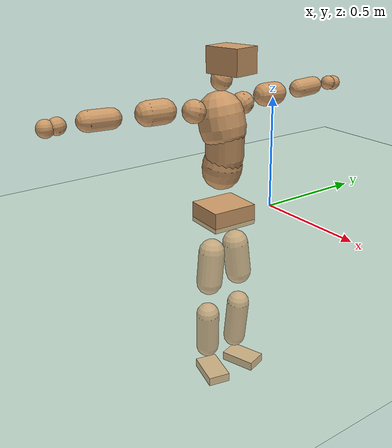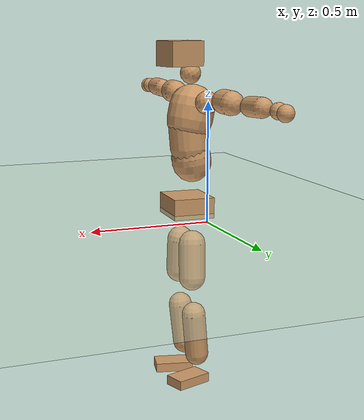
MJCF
<mujoco model="humanoid">
  <compiler coordinate="local" angle="radian"/>
  <default>
    <joint damping="0.0" armature="0.01" stiffness="0.0" limited="true"/>
    <geom conaffinity="1" condim="3" contype="7" margin="0.001" rgba="0.8 0.6 .4 1"/>
  </default>
  <asset>
    <texture type="skybox" builtin="gradient" rgb1=".4 .5 .6" rgb2="0 0 0" width="100" height="100"/>
    <texture builtin="flat" height="1278" mark="cross" markrgb="1 1 1" name="texgeom" random="0.01" rgb1="0.8 0.6 0.4" rgb2="0.8 0.6 0.4" type="cube" width="127"/>
    <texture builtin="checker" height="100" name="texplane" rgb1="0 0 0" rgb2="0.8 0.8 0.8" type="2d" width="100"/>
    <material name="MatPlane" reflectance="0.5" shininess="1" specular="1" texrepeat="60 60" texture="texplane"/>
    <material name="geom" texture="texgeom" texuniform="true"/>
  </asset>
  <worldbody>
    <light cutoff="100" diffuse="1 1 1" dir="-0 0 -1.3" directional="true" exponent="1" pos="0 0 1.3" specular=".1 .1 .1"/>
    <geom conaffinity="1" condim="3" name="floor" pos="0 0 0" rgba="0.8 0.9 0.8 1" size="100 100 .2" type="plane" material="MatPlane"/>
    <body name="Pelvis" pos="-0.0024 -0.258 0.0304">
      <freejoint name="Pelvis"/>
      <geom type="box" contype="1" conaffinity="1" density="5359.374525" pos="-0.0098 0.0004 -0.0074" size="0.0908 0.1024 0.045" quat="0.9998 0.0000 0.0000 -0.0216" name="Pelvis"/>
      <body name="L_Hip" pos="-0.0115 0.0569 -0.0805">
        <joint name="L_Hip_x" type="hinge" pos="0 0 0" axis="1 0 0" stiffness="1600" damping="160" armature="0.02" range="-180.0000 180.0000"/>
        <joint name="L_Hip_y" type="hinge" pos="0 0 0" axis="0 1 0" stiffness="1600" damping="160" armature="0.02" range="-180.0000 180.0000"/>
        <joint name="L_Hip_z" type="hinge" pos="0 0 0" axis="0 0 1" stiffness="1600" damping="160" armature="0.02" range="-180.0000 180.0000"/>
        <geom type="capsule" contype="1" conaffinity="1" density="2040.816327" size="0.0581" fromto="0.0029 0.0088 -0.0876 0.0080 0.0237 -0.2373" name="L_Hip"/>
        <body name="L_Knee" pos="0.0109 0.0325 -0.3248">
          <joint name="L_Knee_x" type="hinge" pos="0 0 0" axis="1 0 0" stiffness="1600" damping="160" armature="0.02" range="-180.0000 180.0000"/>
          <joint name="L_Knee_y" type="hinge" pos="0 0 0" axis="0 1 0" stiffness="1600" damping="160" armature="0.02" range="-180.0000 180.0000"/>
          <joint name="L_Knee_z" type="hinge" pos="0 0 0" axis="0 0 1" stiffness="1600" damping="160" armature="0.02" range="-180.0000 180.0000"/>
          <geom type="capsule" contype="1" conaffinity="1" density="1234.567901" size="0.0517" fromto="-0.0082 -0.0032 -0.0812 -0.0275 -0.0109 -0.2736" name="L_Knee"/>
          <body name="L_Ankle" pos="-0.0356 -0.0141 -0.3548">
            <joint name="L_Ankle_x" type="hinge" pos="0 0 0" axis="1 0 0" stiffness="1600" damping="160" armature="0.02" range="-180.0000 180.0000"/>
            <joint name="L_Ankle_y" type="hinge" pos="0 0 0" axis="0 1 0" stiffness="1600" damping="160" armature="0.02" range="-180.0000 180.0000"/>
            <joint name="L_Ankle_z" type="hinge" pos="0 0 0" axis="0 0 1" stiffness="1600" damping="160" armature="0.02" range="-180.0000 180.0000"/>
            <geom type="box" contype="1" conaffinity="1" density="1000.000008" pos="0.0562 0.0183 -0.0265" size="0.0819 0.0485 0.0206" quat="0.9877 0.0000 0.0000 0.1567" name="L_Ankle"/>
            <body name="L_Toe" pos="0.1123 0.0366 -0.0529">
              <joint name="L_Toe_x" type="hinge" pos="0 0 0" axis="1 0 0" stiffness="1000" damping="100" armature="0.02" range="-180.0000 180.0000"/>
              <joint name="L_Toe_y" type="hinge" pos="0 0 0" axis="0 1 0" stiffness="1000" damping="100" armature="0.02" range="-180.0000 180.0000"/>
              <joint name="L_Toe_z" type="hinge" pos="0 0 0" axis="0 0 1" stiffness="1000" damping="100" armature="0.02" range="-180.0000 180.0000"/>
              <geom type="box" contype="1" conaffinity="1" density="8190233.920216" pos="0.0000 0.0000 0.0259" size="0.001 0.0024 0.001" quat="0.9868 0.0000 0.0000 0.1619" name="L_Toe"/>
            </body>
          </body>
        </body>
      </body>
      <body name="R_Hip" pos="-0.0059 -0.0582 -0.0893">
        <joint name="R_Hip_x" type="hinge" pos="0 0 0" axis="1 0 0" stiffness="1600" damping="160" armature="0.02" range="-180.0000 180.0000"/>
        <joint name="R_Hip_y" type="hinge" pos="0 0 0" axis="0 1 0" stiffness="1600" damping="160" armature="0.02" range="-180.0000 180.0000"/>
        <joint name="R_Hip_z" type="hinge" pos="0 0 0" axis="0 0 1" stiffness="1600" damping="160" armature="0.02" range="-180.0000 180.0000"/>
        <geom type="capsule" contype="1" conaffinity="1" density="2040.816327" size="0.0579" fromto="-0.0001 -0.0090 -0.0874 -0.0002 -0.0241 -0.2341" name="R_Hip"/>
        <body name="R_Knee" pos="-0.0003 -0.0331 -0.3215">
          <joint name="R_Knee_x" type="hinge" pos="0 0 0" axis="1 0 0" stiffness="1600" damping="160" armature="0.02" range="-180.0000 180.0000"/>
          <joint name="R_Knee_y" type="hinge" pos="0 0 0" axis="0 1 0" stiffness="1600" damping="160" armature="0.02" range="-180.0000 180.0000"/>
          <joint name="R_Knee_z" type="hinge" pos="0 0 0" axis="0 0 1" stiffness="1600" damping="160" armature="0.02" range="-180.0000 180.0000"/>
          <geom type="capsule" contype="1" conaffinity="1" density="1234.567901" size="0.0524" fromto="-0.0080 0.0038 -0.0820 -0.0259 0.0124 -0.2649" name="R_Knee"/>
          <body name="R_Ankle" pos="-0.0339 0.0163 -0.3469">
            <joint name="R_Ankle_x" type="hinge" pos="0 0 0" axis="1 0 0" stiffness="1600" damping="160" armature="0.02" range="-180.0000 180.0000"/>
            <joint name="R_Ankle_y" type="hinge" pos="0 0 0" axis="0 1 0" stiffness="1600" damping="160" armature="0.02" range="-180.0000 180.0000"/>
            <joint name="R_Ankle_z" type="hinge" pos="0 0 0" axis="0 0 1" stiffness="1600" damping="160" armature="0.02" range="-180.0000 180.0000"/>
            <geom type="box" contype="1" conaffinity="1" density="1000.000008" pos="0.0604 -0.0140 -0.0260" size="0.085 0.0498 0.02" quat="0.9935 0.0000 0.0000 -0.1139" name="R_Ankle"/>
            <body name="R_Toe" pos="0.1209 -0.0281 -0.052">
              <joint name="R_Toe_x" type="hinge" pos="0 0 0" axis="1 0 0" stiffness="1000" damping="100" armature="0.02" range="-180.0000 180.0000"/>
              <joint name="R_Toe_y" type="hinge" pos="0 0 0" axis="0 1 0" stiffness="1000" damping="100" armature="0.02" range="-180.0000 180.0000"/>
              <joint name="R_Toe_z" type="hinge" pos="0 0 0" axis="0 0 1" stiffness="1000" damping="100" armature="0.02" range="-180.0000 180.0000"/>
              <geom type="box" contype="1" conaffinity="1" density="7922809.513722" pos="0.0000 0.0000 0.0275" size="0.0011 0.0025 0.0011" quat="0.9945 0.0000 0.0000 -0.1044" name="R_Toe"/>
            </body>
          </body>
        </body>
      </body>
      <body name="Torso" pos="-0.0413 0.0039 0.1256">
        <joint name="Torso_x" type="hinge" pos="0 0 0" axis="1 0 0" stiffness="2000" damping="200" armature="0.02" range="-180.0000 180.0000"/>
        <joint name="Torso_y" type="hinge" pos="0 0 0" axis="0 1 0" stiffness="2000" damping="200" armature="0.02" range="-180.0000 180.0000"/>
        <joint name="Torso_z" type="hinge" pos="0 0 0" axis="0 0 1" stiffness="2000" damping="200" armature="0.02" range="-180.0000 180.0000"/>
        <geom type="capsule" contype="1" conaffinity="1" density="2040.816327" size="0.0864" fromto="0.0162 0.0038 0.0848 0.0110 0.0026 0.0578" name="Torso"/>
        <body name="Spine" pos="0.0272 0.0064 0.1426">
          <joint name="Spine_x" type="hinge" pos="0 0 0" axis="1 0 0" stiffness="2000" damping="200" armature="0.02" range="-180.0000 180.0000"/>
          <joint name="Spine_y" type="hinge" pos="0 0 0" axis="0 1 0" stiffness="2000" damping="200" armature="0.02" range="-180.0000 180.0000"/>
          <joint name="Spine_z" type="hinge" pos="0 0 0" axis="0 0 1" stiffness="2000" damping="200" armature="0.02" range="-180.0000 180.0000"/>
          <geom type="capsule" contype="1" conaffinity="1" density="2040.816327" size="0.0826" fromto="0.0058 -0.0029 0.0823 -0.0017 0.0009 -0.0246" name="Spine"/>
          <body name="Chest" pos="0.0041 -0.002 0.0577">
            <joint name="Chest_x" type="hinge" pos="0 0 0" axis="1 0 0" stiffness="2000" damping="200" armature="0.02" range="-180.0000 180.0000"/>
            <joint name="Chest_y" type="hinge" pos="0 0 0" axis="0 1 0" stiffness="2000" damping="200" armature="0.02" range="-180.0000 180.0000"/>
            <joint name="Chest_z" type="hinge" pos="0 0 0" axis="0 0 1" stiffness="2000" damping="200" armature="0.02" range="-180.0000 180.0000"/>
            <geom type="capsule" contype="1" conaffinity="1" density="2040.816327" size="0.0994" fromto="-0.0223 -0.0054 0.0967 -0.0097 -0.0023 0.0419" name="Chest"/>
            <body name="Neck" pos="-0.0401 -0.0109 0.2006">
              <joint name="Neck_x" type="hinge" pos="0 0 0" axis="1 0 0" stiffness="1000" damping="100" armature="0.02" range="-180.0000 180.0000"/>
              <joint name="Neck_y" type="hinge" pos="0 0 0" axis="0 1 0" stiffness="1000" damping="100" armature="0.02" range="-180.0000 180.0000"/>
              <joint name="Neck_z" type="hinge" pos="0 0 0" axis="0 0 1" stiffness="1000" damping="100" armature="0.02" range="-180.0000 180.0000"/>
              <geom type="capsule" contype="1" conaffinity="1" density="1000" size="0.0447" fromto="0.0251 0.0047 0.0407 0.0261 0.0049 0.0423" name="Neck"/>
              <body name="Head" pos="0.0512 0.0096 0.083">
                <joint name="Head_x" type="hinge" pos="0 0 0" axis="1 0 0" stiffness="1000" damping="100" armature="0.02" range="-180.0000 180.0000"/>
                <joint name="Head_y" type="hinge" pos="0 0 0" axis="0 1 0" stiffness="1000" damping="100" armature="0.02" range="-180.0000 180.0000"/>
                <joint name="Head_z" type="hinge" pos="0 0 0" axis="0 0 1" stiffness="1000" damping="100" armature="0.02" range="-180.0000 180.0000"/>
                <geom type="box" contype="1" conaffinity="1" density="2249.999908" pos="0.0266 0.0058 0.0425" size="0.0796 0.0624 0.0534" quat="0.9942 0.0000 0.0000 0.1073" name="Head"/>
              </body>
            </body>
            <body name="L_Thorax" pos="-0.0267 0.0643 0.1082">
              <joint name="L_Thorax_x" type="hinge" pos="0 0 0" axis="1 0 0" stiffness="1000" damping="100" armature="0.02" range="-180.0000 180.0000"/>
              <joint name="L_Thorax_y" type="hinge" pos="0 0 0" axis="0 1 0" stiffness="1000" damping="100" armature="0.02" range="-180.0000 180.0000"/>
              <joint name="L_Thorax_z" type="hinge" pos="0 0 0" axis="0 0 1" stiffness="1000" damping="100" armature="0.02" range="-180.0000 180.0000"/>
              <geom type="capsule" contype="1" conaffinity="1" density="1000" size="0.0489" fromto="-0.0096 0.0564 0.0180 -0.0100 0.0582 0.0186" name="L_Thorax"/>
              <body name="L_Shoulder" pos="-0.0196 0.1146 0.0366">
                <joint name="L_Shoulder_x" type="hinge" pos="0 0 0" axis="1 0 0" stiffness="1000" damping="100" armature="0.02" range="-720.0000 720.0000"/>
                <joint name="L_Shoulder_y" type="hinge" pos="0 0 0" axis="0 1 0" stiffness="1000" damping="100" armature="0.02" range="-720.0000 720.0000"/>
                <joint name="L_Shoulder_z" type="hinge" pos="0 0 0" axis="0 0 1" stiffness="1000" damping="100" armature="0.02" range="-720.0000 720.0000"/>
                <geom type="capsule" contype="1" conaffinity="1" density="1000" size="0.0505" fromto="-0.0066 0.0802 -0.0023 -0.0118 0.1427 -0.0041" name="L_Shoulder"/>
                <body name="L_Elbow" pos="-0.0184 0.2229 -0.0064">
                  <joint name="L_Elbow_x" type="hinge" pos="0 0 0" axis="1 0 0" stiffness="1000" damping="100" armature="0.02" range="-720.0000 720.0000"/>
                  <joint name="L_Elbow_y" type="hinge" pos="0 0 0" axis="0 1 0" stiffness="1000" damping="100" armature="0.02" range="-720.0000 720.0000"/>
                  <joint name="L_Elbow_z" type="hinge" pos="0 0 0" axis="0 0 1" stiffness="1000" damping="100" armature="0.02" range="-720.0000 720.0000"/>
                  <geom type="capsule" contype="1" conaffinity="1" density="1000" size="0.0404" fromto="-0.0028 0.0703 0.0028 -0.0066 0.1653 0.0067" name="L_Elbow"/>
                  <body name="L_Wrist" pos="-0.0094 0.2356 0.0095">
                    <joint name="L_Wrist_x" type="hinge" pos="0 0 0" axis="1 0 0" stiffness="600" damping="60" armature="0.02" range="-180.0000 180.0000"/>
                    <joint name="L_Wrist_y" type="hinge" pos="0 0 0" axis="0 1 0" stiffness="600" damping="60" armature="0.02" range="-180.0000 180.0000"/>
                    <joint name="L_Wrist_z" type="hinge" pos="0 0 0" axis="0 0 1" stiffness="600" damping="60" armature="0.02" range="-180.0000 180.0000"/>
                    <geom type="capsule" contype="1" conaffinity="1" density="1000" size="0.0325" fromto="-0.0069 0.0395 -0.0048 -0.0073 0.0414 -0.0050" name="L_Wrist"/>
                    <body name="L_Hand" pos="-0.0142 0.0809 -0.0098">
                      <joint name="L_Hand_x" type="hinge" pos="0 0 0" axis="1 0 0" stiffness="600" damping="60" armature="0.02" range="-180.0000 180.0000"/>
                      <joint name="L_Hand_y" type="hinge" pos="0 0 0" axis="0 1 0" stiffness="600" damping="60" armature="0.02" range="-180.0000 180.0000"/>
                      <joint name="L_Hand_z" type="hinge" pos="0 0 0" axis="0 0 1" stiffness="600" damping="60" armature="0.02" range="-180.0000 180.0000"/>
                      <geom type="sphere" contype="1" conaffinity="1" density="1000" size="0.0334" pos="0.0000 0.0000 0.0000" name="L_Hand"/>
                    </body>
                  </body>
                </body>
              </body>
            </body>
            <body name="R_Thorax" pos="-0.0293 -0.0766 0.107">
              <joint name="R_Thorax_x" type="hinge" pos="0 0 0" axis="1 0 0" stiffness="1000" damping="100" armature="0.02" range="-180.0000 180.0000"/>
              <joint name="R_Thorax_y" type="hinge" pos="0 0 0" axis="0 1 0" stiffness="1000" damping="100" armature="0.02" range="-180.0000 180.0000"/>
              <joint name="R_Thorax_z" type="hinge" pos="0 0 0" axis="0 0 1" stiffness="1000" damping="100" armature="0.02" range="-180.0000 180.0000"/>
              <geom type="capsule" contype="1" conaffinity="1" density="1000" size="0.0492" fromto="-0.0046 -0.0522 0.0175 -0.0048 -0.0541 0.0181" name="R_Thorax"/>
              <body name="R_Shoulder" pos="-0.0094 -0.1062 0.0357">
                <joint name="R_Shoulder_x" type="hinge" pos="0 0 0" axis="1 0 0" stiffness="1000" damping="100" armature="0.02" range="-720.0000 720.0000"/>
                <joint name="R_Shoulder_y" type="hinge" pos="0 0 0" axis="0 1 0" stiffness="1000" damping="100" armature="0.02" range="-720.0000 720.0000"/>
                <joint name="R_Shoulder_z" type="hinge" pos="0 0 0" axis="0 0 1" stiffness="1000" damping="100" armature="0.02" range="-720.0000 720.0000"/>
                <geom type="capsule" contype="1" conaffinity="1" density="1000" size="0.051" fromto="-0.0092 -0.0805 -0.0008 -0.0170 -0.1486 -0.0015" name="R_Shoulder"/>
                <body name="R_Elbow" pos="-0.0262 -0.229 -0.0024">
                  <joint name="R_Elbow_x" type="hinge" pos="0 0 0" axis="1 0 0" stiffness="1000" damping="100" armature="0.02" range="-720.0000 720.0000"/>
                  <joint name="R_Elbow_y" type="hinge" pos="0 0 0" axis="0 1 0" stiffness="1000" damping="100" armature="0.02" range="-720.0000 720.0000"/>
                  <joint name="R_Elbow_z" type="hinge" pos="0 0 0" axis="0 0 1" stiffness="1000" damping="100" armature="0.02" range="-720.0000 720.0000"/>
                  <geom type="capsule" contype="1" conaffinity="1" density="1000" size="0.0412" fromto="-0.0020 -0.0711 0.0021 -0.0047 -0.1687 0.0050" name="R_Elbow"/>
                  <body name="R_Wrist" pos="-0.0068 -0.2398 0.0071">
                    <joint name="R_Wrist_x" type="hinge" pos="0 0 0" axis="1 0 0" stiffness="600" damping="60" armature="0.02" range="-180.0000 180.0000"/>
                    <joint name="R_Wrist_y" type="hinge" pos="0 0 0" axis="0 1 0" stiffness="600" damping="60" armature="0.02" range="-180.0000 180.0000"/>
                    <joint name="R_Wrist_z" type="hinge" pos="0 0 0" axis="0 0 1" stiffness="600" damping="60" armature="0.02" range="-180.0000 180.0000"/>
                    <geom type="capsule" contype="1" conaffinity="1" density="1000" size="0.0337" fromto="-0.0045 -0.0412 -0.0040 -0.0047 -0.0432 -0.0042" name="R_Wrist"/>
                    <body name="R_Hand" pos="-0.0093 -0.0843 -0.0082">
                      <joint name="R_Hand_x" type="hinge" pos="0 0 0" axis="1 0 0" stiffness="600" damping="60" armature="0.02" range="-180.0000 180.0000"/>
                      <joint name="R_Hand_y" type="hinge" pos="0 0 0" axis="0 1 0" stiffness="600" damping="60" armature="0.02" range="-180.0000 180.0000"/>
                      <joint name="R_Hand_z" type="hinge" pos="0 0 0" axis="0 0 1" stiffness="600" damping="60" armature="0.02" range="-180.0000 180.0000"/>
                      <geom type="sphere" contype="1" conaffinity="1" density="1000" size="0.0345" pos="0.0000 0.0000 0.0000" name="R_Hand"/>
                    </body>
                  </body>
                </body>
              </body>
            </body>
          </body>
        </body>
      </body>
    </body>
  </worldbody>
  <actuator>
    <motor name="L_Hip_x" joint="L_Hip_x" gear="500"/>
    <motor name="L_Hip_y" joint="L_Hip_y" gear="500"/>
    <motor name="L_Hip_z" joint="L_Hip_z" gear="500"/>
    <motor name="L_Knee_x" joint="L_Knee_x" gear="500"/>
    <motor name="L_Knee_y" joint="L_Knee_y" gear="500"/>
    <motor name="L_Knee_z" joint="L_Knee_z" gear="500"/>
    <motor name="L_Ankle_x" joint="L_Ankle_x" gear="500"/>
    <motor name="L_Ankle_y" joint="L_Ankle_y" gear="500"/>
    <motor name="L_Ankle_z" joint="L_Ankle_z" gear="500"/>
    <motor name="L_Toe_x" joint="L_Toe_x" gear="500"/>
    <motor name="L_Toe_y" joint="L_Toe_y" gear="500"/>
    <motor name="L_Toe_z" joint="L_Toe_z" gear="500"/>
    <motor name="R_Hip_x" joint="R_Hip_x" gear="500"/>
    <motor name="R_Hip_y" joint="R_Hip_y" gear="500"/>
    <motor name="R_Hip_z" joint="R_Hip_z" gear="500"/>
    <motor name="R_Knee_x" joint="R_Knee_x" gear="500"/>
    <motor name="R_Knee_y" joint="R_Knee_y" gear="500"/>
    <motor name="R_Knee_z" joint="R_Knee_z" gear="500"/>
    <motor name="R_Ankle_x" joint="R_Ankle_x" gear="500"/>
    <motor name="R_Ankle_y" joint="R_Ankle_y" gear="500"/>
    <motor name="R_Ankle_z" joint="R_Ankle_z" gear="500"/>
    <motor name="R_Toe_x" joint="R_Toe_x" gear="500"/>
    <motor name="R_Toe_y" joint="R_Toe_y" gear="500"/>
    <motor name="R_Toe_z" joint="R_Toe_z" gear="500"/>
    <motor name="Torso_x" joint="Torso_x" gear="500"/>
    <motor name="Torso_y" joint="Torso_y" gear="500"/>
    <motor name="Torso_z" joint="Torso_z" gear="500"/>
    <motor name="Spine_x" joint="Spine_x" gear="500"/>
    <motor name="Spine_y" joint="Spine_y" gear="500"/>
    <motor name="Spine_z" joint="Spine_z" gear="500"/>
    <motor name="Chest_x" joint="Chest_x" gear="500"/>
    <motor name="Chest_y" joint="Chest_y" gear="500"/>
    <motor name="Chest_z" joint="Chest_z" gear="500"/>
    <motor name="Neck_x" joint="Neck_x" gear="500"/>
    <motor name="Neck_y" joint="Neck_y" gear="500"/>
    <motor name="Neck_z" joint="Neck_z" gear="500"/>
    <motor name="Head_x" joint="Head_x" gear="500"/>
    <motor name="Head_y" joint="Head_y" gear="500"/>
    <motor name="Head_z" joint="Head_z" gear="500"/>
    <motor name="L_Thorax_x" joint="L_Thorax_x" gear="500"/>
    <motor name="L_Thorax_y" joint="L_Thorax_y" gear="500"/>
    <motor name="L_Thorax_z" joint="L_Thorax_z" gear="500"/>
    <motor name="L_Shoulder_x" joint="L_Shoulder_x" gear="500"/>
    <motor name="L_Shoulder_y" joint="L_Shoulder_y" gear="500"/>
    <motor name="L_Shoulder_z" joint="L_Shoulder_z" gear="500"/>
    <motor name="L_Elbow_x" joint="L_Elbow_x" gear="500"/>
    <motor name="L_Elbow_y" joint="L_Elbow_y" gear="500"/>
    <motor name="L_Elbow_z" joint="L_Elbow_z" gear="500"/>
    <motor name="L_Wrist_x" joint="L_Wrist_x" gear="500"/>
    <motor name="L_Wrist_y" joint="L_Wrist_y" gear="500"/>
    <motor name="L_Wrist_z" joint="L_Wrist_z" gear="500"/>
    <motor name="L_Hand_x" joint="L_Hand_x" gear="500"/>
    <motor name="L_Hand_y" joint="L_Hand_y" gear="500"/>
    <motor name="L_Hand_z" joint="L_Hand_z" gear="500"/>
    <motor name="R_Thorax_x" joint="R_Thorax_x" gear="500"/>
    <motor name="R_Thorax_y" joint="R_Thorax_y" gear="500"/>
    <motor name="R_Thorax_z" joint="R_Thorax_z" gear="500"/>
    <motor name="R_Shoulder_x" joint="R_Shoulder_x" gear="500"/>
    <motor name="R_Shoulder_y" joint="R_Shoulder_y" gear="500"/>
    <motor name="R_Shoulder_z" joint="R_Shoulder_z" gear="500"/>
    <motor name="R_Elbow_x" joint="R_Elbow_x" gear="500"/>
    <motor name="R_Elbow_y" joint="R_Elbow_y" gear="500"/>
    <motor name="R_Elbow_z" joint="R_Elbow_z" gear="500"/>
    <motor name="R_Wrist_x" joint="R_Wrist_x" gear="500"/>
    <motor name="R_Wrist_y" joint="R_Wrist_y" gear="500"/>
    <motor name="R_Wrist_z" joint="R_Wrist_z" gear="500"/>
    <motor name="R_Hand_x" joint="R_Hand_x" gear="500"/>
    <motor name="R_Hand_y" joint="R_Hand_y" gear="500"/>
    <motor name="R_Hand_z" joint="R_Hand_z" gear="500"/>
  </actuator>
  <contact>
    <exclude body1="Torso" body2="Chest"/>
    <exclude body1="Head" body2="Chest"/>
    <exclude body1="R_Knee" body2="R_Toe"/>
    <exclude body1="R_Knee" body2="L_Ankle"/>
    <exclude body1="R_Knee" body2="L_Toe"/>
    <exclude body1="L_Knee" body2="L_Toe"/>
    <exclude body1="L_Knee" body2="R_Ankle"/>
    <exclude body1="L_Knee" body2="R_Toe"/>
    <exclude body1="L_Shoulder" body2="Chest"/>
    <exclude body1="R_Shoulder" body2="Chest"/>
  </contact>
  <sensor/>
  <size njmax="700" nconmax="700"/>
</mujoco>
